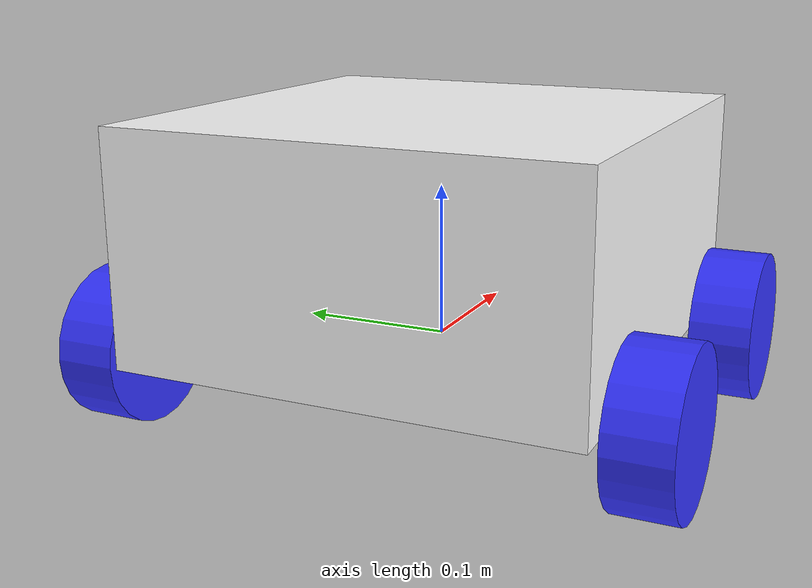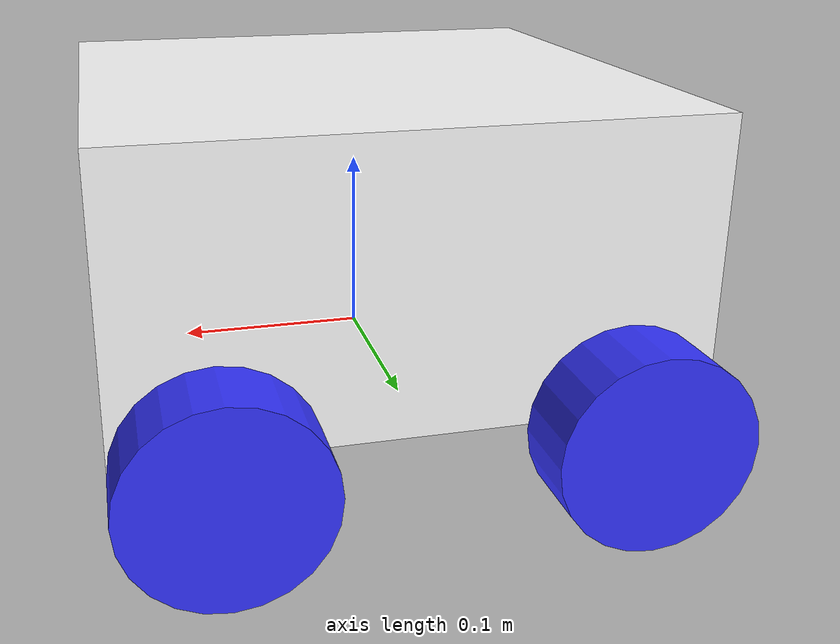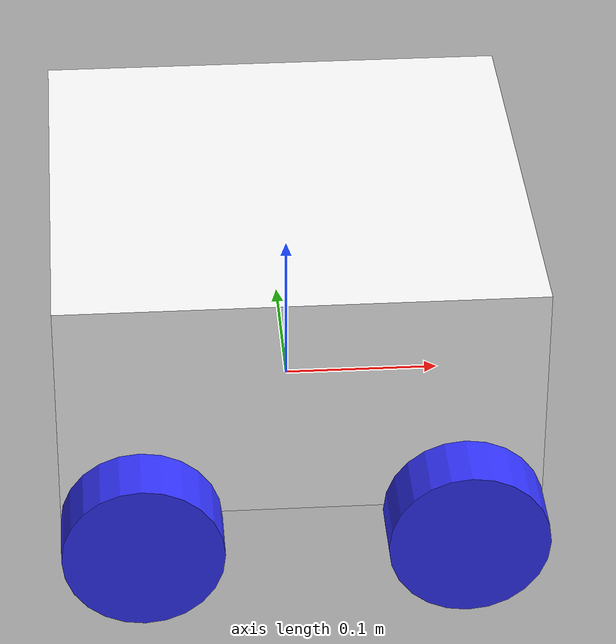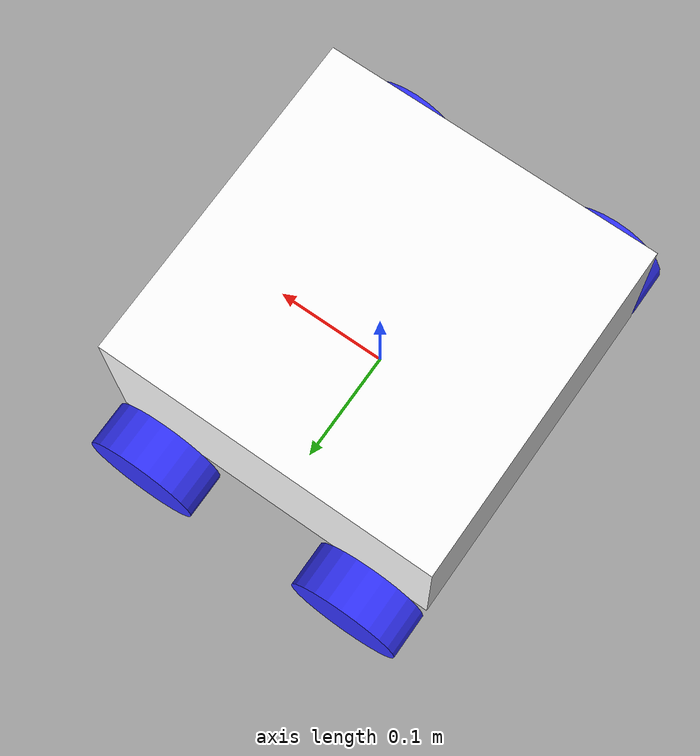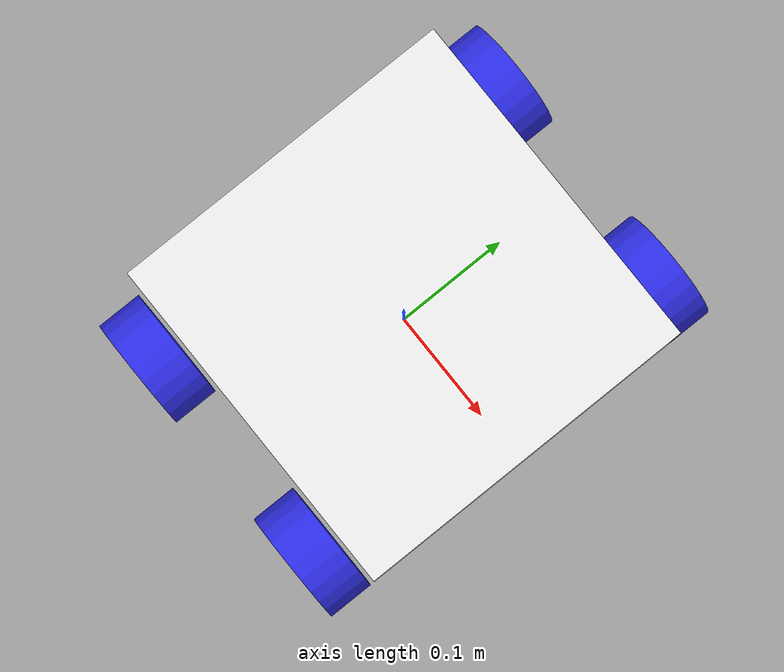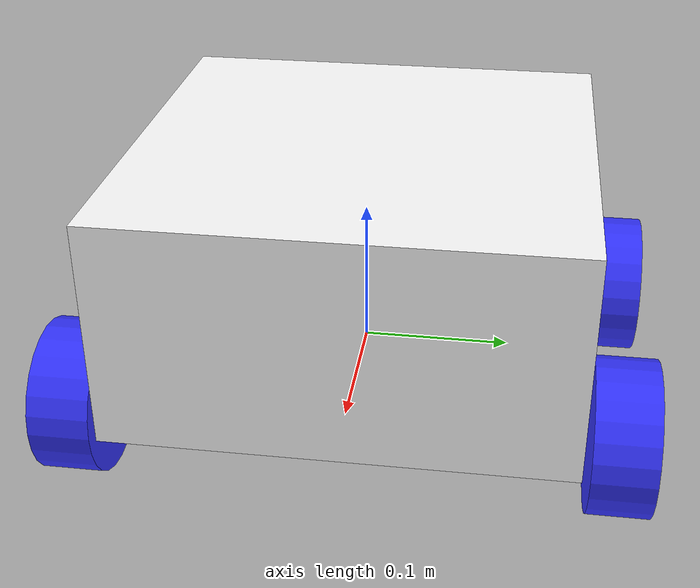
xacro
<?xml version="1.0"?>
<robot xmlns:xacro="http://www.ros.org/wiki/xacro"  name="robot">

    <xacro:arg name="use_ros2_control" default="true"/>

    <xacro:include filename="robot_core.xacro" />

    <xacro:if value="$(arg use_ros2_control)">
        <xacro:include filename="ros2_control.xacro"/>
    </xacro:if>
    <xacro:unless value="$(arg use_ros2_control)">
        <xacro:include filename="gazebo_mod4.xacro"/>
    </xacro:unless>

</robot>

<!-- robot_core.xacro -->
<robot xmlns:xacro="http://www.ros.org/wiki/xacro">

    <xacro:include filename="inertial_macros.xacro"/>

    <material name="white">
        <color rgba="1 1 1 1"/>
    </material>

    <material name="ornage">
        <color rgba="1 0.3 0.1 1"/>
    </material>

    <material name="blue">
        <color rgba="0.2 0.2 1 1"/>
    </material>

    <material name="black">
        <color rgba="0 0 0 1"/>
    </material>

    <material name="red">
        <color rgba="1 0 0 1"/>
    </material>
    <!-- BASE LINK -->

    <link name="base_link">

    </link>

    <!-- CHASSIS LINK -->

    <joint name="chassis_joint" type="fixed">
        <parent link="base_link"/>
        <child link="chassis"/>
        <origin xyz="-0.15 0 0"/>
    </joint>

    <link name="chassis">
        <visual>
            <origin xyz="0.15 0 0.075"/>
            <geometry>
                <box size="0.3 0.3 0.15"/>
            </geometry>
            <material name="white"/>
        </visual>
        <collision>
            <origin xyz="0.15 0 0.075"/>
            <geometry>
                <box size="0.3 0.3 0.15"/>
            </geometry>
        </collision>
        <xacro:inertial_box mass="0.5" x="0.3" y="0.3" z="0.15">
            <origin xyz="0.15 0 0.075" rpy="0 0 0"/>
        </xacro:inertial_box>

    </link>

    <gazebo reference="chassis">
        <material>Gazebo/White</material>
    </gazebo>

    <!-- LEFT FRONT WHEEL LINK -->

    <joint name="left_front_wheel_joint" type="continuous">
        <parent link="base_link"/>
        <child link="left_front_wheel"/>
        <origin xyz="0.1 0.175 0" rpy="-${pi/2} 0 0"/>
        <axis xyz="0 0 1"/>
    </joint>

    <link name="left_front_wheel">
        <visual>
            <geometry>
                <cylinder radius="0.05" length="0.04"/>
            </geometry>
            <material name="blue"/>
        </visual>
        <collision>
            <geometry>
                <sphere radius="0.05"/>
            </geometry>
        </collision>
        <xacro:inertial_cylinder mass="0.1" length="0.4" radius="0.5">
            <origin xyz="0 0 0" rpy="0 0 0"/>
        </xacro:inertial_cylinder>
    </link>

    <gazebo reference="left_front_wheel">
        <material>Gazebo/Blue</material>
    </gazebo>

    <!-- LEFT BACK WHEEL LINK -->

    <joint name="left_back_wheel_joint" type="continuous">
        <parent link="base_link"/>
        <child link="left_back_wheel"/>
        <origin xyz="-0.1 0.175 0" rpy="-${pi/2} 0 0"/>
        <axis xyz="0 0 1"/>
    </joint>

    <link name="left_back_wheel">
        <visual>
            <geometry>
                <cylinder radius="0.05" length="0.04"/>
            </geometry>
            <material name="blue"/>
        </visual>
        <collision>
            <geometry>
                <sphere radius="0.05"/>
            </geometry>
        </collision>
        <xacro:inertial_cylinder mass="0.1" length="0.4" radius="0.5">
            <origin xyz="0 0 0" rpy="0 0 0"/>
        </xacro:inertial_cylinder>
    </link>

    <gazebo reference="left_back_wheel">
        <material>Gazebo/Blue</material>
    </gazebo>

        <!-- RIGHT FRONT WHEEL LINK -->

        <joint name="right_front_wheel_joint" type="continuous">
            <parent link="base_link"/>
            <child link="right_front_wheel"/>
            <origin xyz="0.1 -0.175 0" rpy="${pi/2} 0 0"/>
            <axis xyz="0 0 -1"/>
        </joint>

        <link name="right_front_wheel">
            <visual>
                <geometry>
                    <cylinder radius="0.05" length="0.04"/>
                </geometry>
                <material name="blue"/>
            </visual>
            <collision>
                <geometry>
                    <sphere radius="0.05"/>
                </geometry>
            </collision>
            <xacro:inertial_cylinder mass="0.1" length="0.4" radius="0.5">
                <origin xyz="0 0 0" rpy="0 0 0"/>
            </xacro:inertial_cylinder>
        </link>

        <gazebo reference="right_front_wheel">
            <material>Gazebo/Blue</material>
        </gazebo>

        <!-- RIGHT BACK WHEEL LINK -->

        <joint name="right_back_wheel_joint" type="continuous">
            <parent link="base_link"/>
            <child link="right_back_wheel"/>
            <origin xyz="-0.1 -0.175 0" rpy="${pi/2} 0 0"/>
            <axis xyz="0 0 -1"/>
        </joint>

        <link name="right_back_wheel">
            <visual>
                <geometry>
                    <cylinder radius="0.05" length="0.04"/>
                </geometry>
                <material name="blue"/>
            </visual>
            <collision>
                <geometry>
                    <sphere radius="0.05"/>
                </geometry>
            </collision>
            <xacro:inertial_cylinder mass="0.1" length="0.4" radius="0.5">
                <origin xyz="0 0 0" rpy="0 0 0"/>
            </xacro:inertial_cylinder>
        </link>

        <gazebo reference="right_back_wheel">
            <material>Gazebo/Blue</material>
        </gazebo>

</robot>
